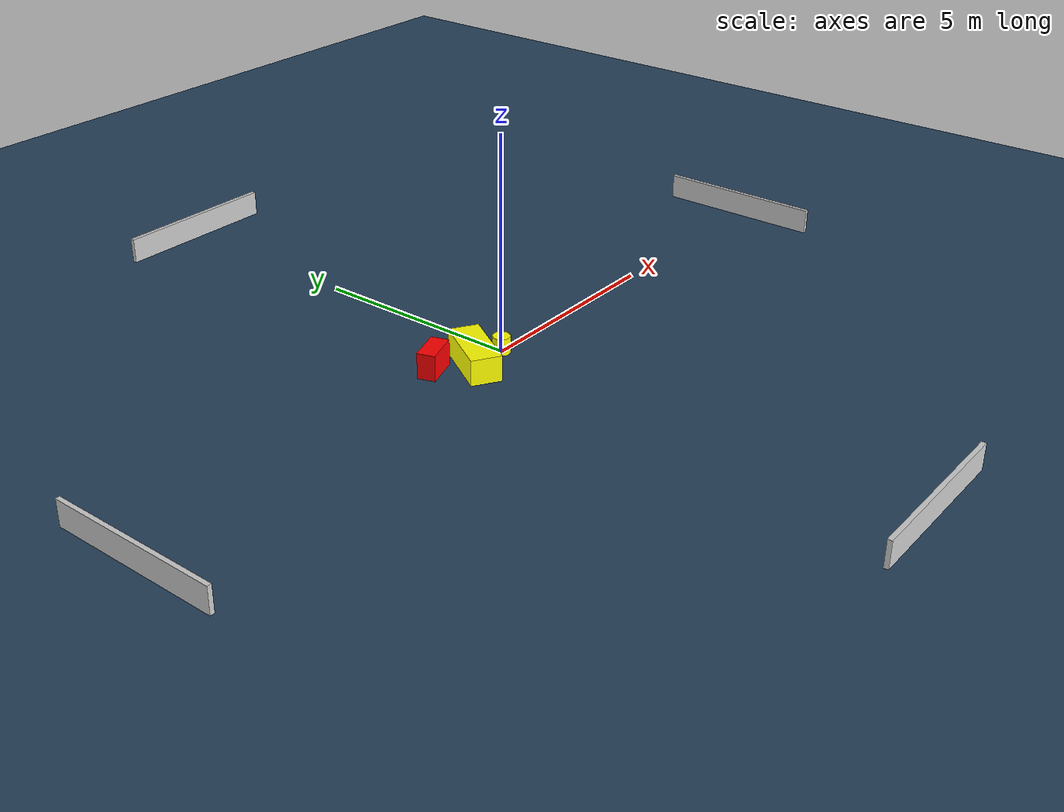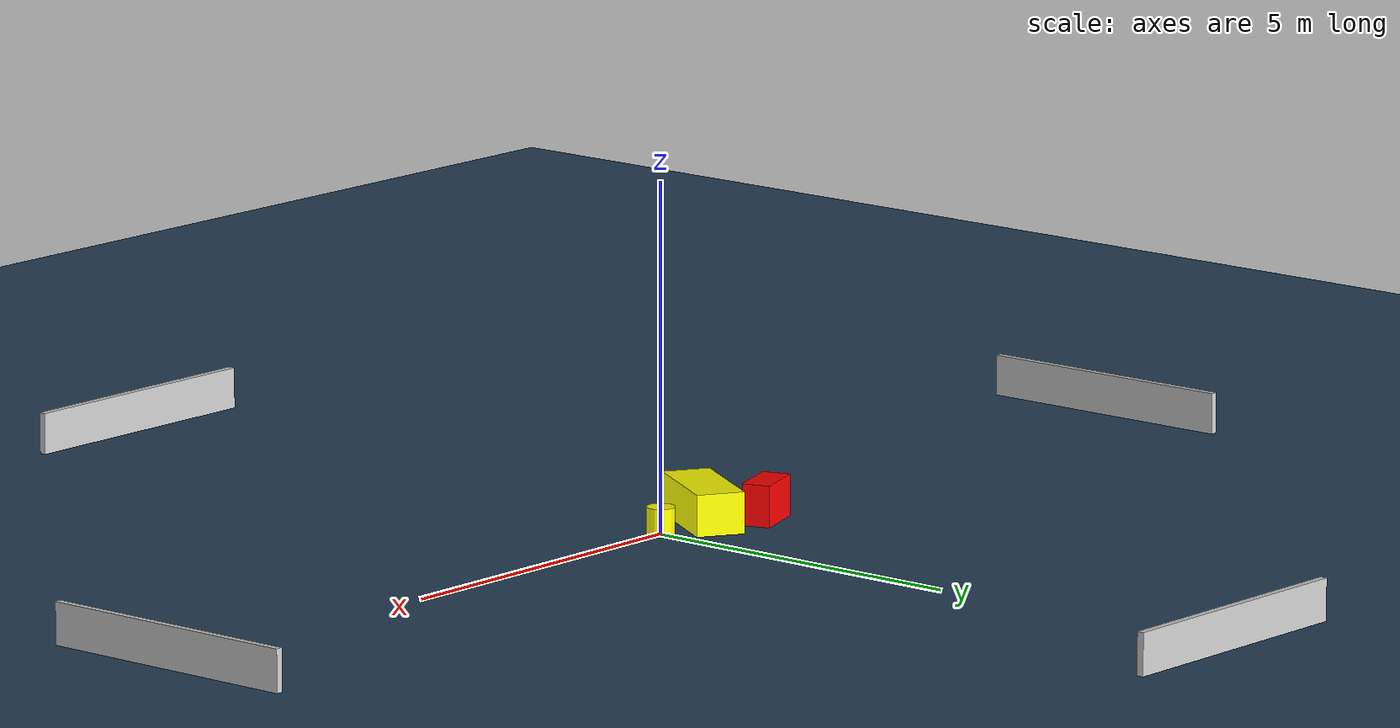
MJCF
<?xml version="1.0" ?>
<mujoco model="generated_environment">
  <option timestep="0.01" integrator="RK4" cone="elliptic"/>
  <default>
    <geom density="1"/>
  </default>
  <asset>
    <texture builtin="gradient" height="3072" name="skybox" rgb1="0.3 0.5 0.7" rgb2="0 0 0" type="skybox" width="512"/>
    <texture builtin="checker" height="300" name="groundplane" rgb1="0.2 0.3 0.4" rgb2="0.1 0.2 0.3" type="2d" width="300"/>
    <material name="groundplane" reflectance="0.2" texrepeat="5 5" texture="groundplane"/>
  </asset>
  <worldbody>
    <light dir="0 0 -1" directional="true" pos="0 0 1.5"/>
    <geom condim="3" friction="0.5 0.005 0.001" material="groundplane" name="floor" pos="0 0 0" size="0 0 0.05" type="plane"/>
    <body name="walls">
      <geom name="wall_1" condim="4" pos="-10.0 0.0 0.3" rgba="0.800000011920929 0.800000011920929 0.800000011920929 1.0" size="0.05 2.0 0.3" type="box"/>
      <geom name="wall_2" condim="4" pos="10.0 0.0 0.3" rgba="0.800000011920929 0.800000011920929 0.800000011920929 1.0" size="0.05 2.0 0.3" type="box"/>
      <geom name="wall_3" condim="4" pos="0.0 -10.0 0.3" rgba="0.800000011920929 0.800000011920929 0.800000011920929 1.0" size="2.0 0.05 0.3" type="box"/>
      <geom name="wall_4" condim="4" pos="0.0 10.0 0.3" rgba="0.800000011920929 0.800000011920929 0.800000011920929 1.0" size="2.0 0.05 0.3" type="box"/>
    </body>
    <body name="robot">
      <joint name="joint_x" type="slide" pos="0 0 0" axis="1 0 0"/>
      <joint name="joint_y" type="slide" pos="0 0 0" axis="0 1 0"/>
      <geom name="robot" type="cylinder" pos="0.0 0.0 0.2" size="0.2 0.2 0.0" mass="5.0" friction="1.0 0.005 0.0001" condim="4" rgba="1.0 1.0 0.0 1.0"/>
    </body>
    <body name="obstacle_1_movable">
      <geom name="obstacle_1_movable" condim="4" pos="-0.8882802643314223 0.016042478916405135 0.3" euler="0 0 328.5655229308048" friction="0.0 0.005 0.001" rgba="1.0 1.0 0.0 1.0" size="0.3503985736260457 0.7722924670113955 0.3" type="box" mass="0.1"/>
      <joint type="free"/>
    </body>
    <body name="obstacle_2_static">
      <geom name="obstacle_2_static" condim="4" pos="-1.5893130256005605 0.5762529046289201 0.3" euler="0 0 288.79479992332915" friction="0.0 0.005 0.001" rgba="1.0 0.0 0.0 1.0" size="0.2066357747548563 0.4048418158405054 0.3" type="box"/>
    </body>
  </worldbody>
  <actuator>
    <motor name="actuator_x" joint="joint_x" gear="1" ctrlrange="-1 1"/>
    <motor name="actuator_y" joint="joint_y" gear="1" ctrlrange="-1 1"/>
  </actuator>
</mujoco>
